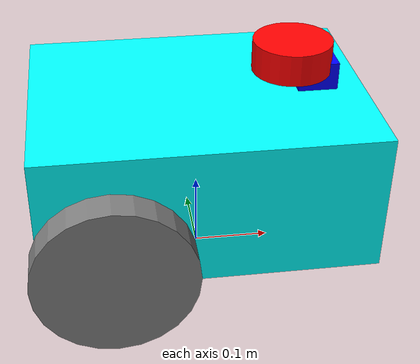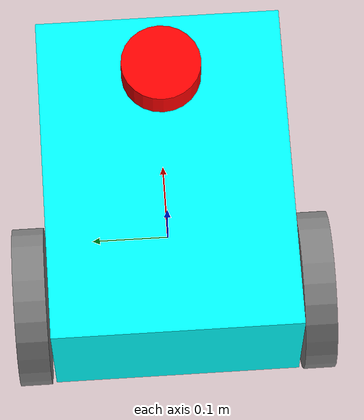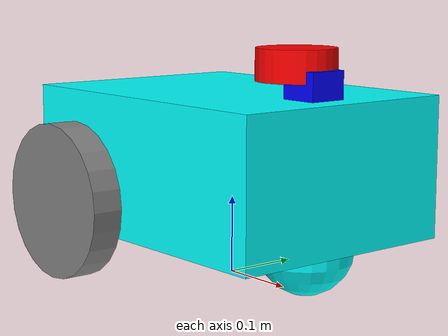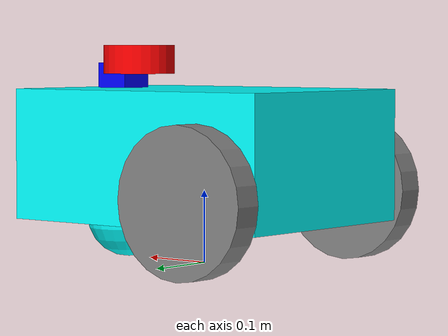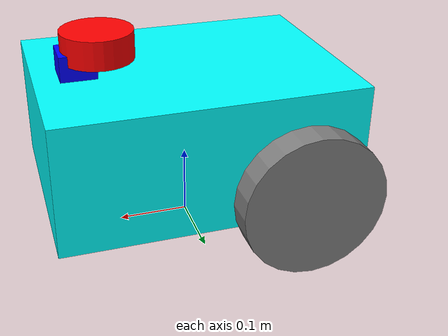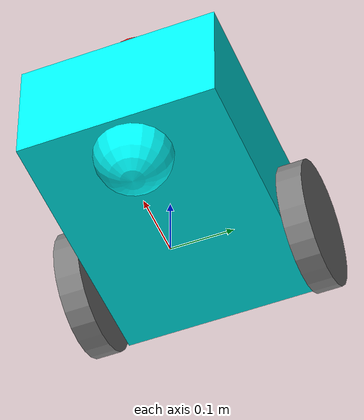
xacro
<?xml version="1.0"?>
<robot name="sam_bot" xmlns:xacro="http://ros.org/wiki/xacro">

  <!-- Define robot constants -->
  <xacro:property name="base_width" value="0.31"/>
  <xacro:property name="base_length" value="0.42"/>
  <xacro:property name="base_height" value="0.18"/>

  <xacro:property name="wheel_radius" value="0.10"/>
  <xacro:property name="wheel_width" value="0.04"/>
  <xacro:property name="wheel_ygap" value="0.025"/>
  <xacro:property name="wheel_zoff" value="0.05"/>
  <xacro:property name="wheel_xoff" value="0.12"/>

  <xacro:property name="caster_xoff" value="0.14"/>

  <!-- Define intertial property macros  -->
  <xacro:macro name="box_inertia" params="m w h d">
    <inertial>
      <origin xyz="0 0 0" rpy="${pi/2} 0 ${pi/2}"/>
      <mass value="${m}"/>
      <inertia ixx="${(m/12) * (h*h + d*d)}" ixy="0.0" ixz="0.0"
               iyy="${(m/12) * (w*w + d*d)}" iyz="0.0"
               izz="${(m/12) * (w*w + h*h)}"/>
    </inertial>
  </xacro:macro>

  <xacro:macro name="cylinder_inertia" params="m r h">
    <inertial>
      <origin xyz="0 0 0" rpy="${pi/2} 0 0" />
      <mass value="${m}"/>
      <inertia ixx="${(m/12) * (3*r*r + h*h)}" ixy = "0" ixz = "0"
               iyy="${(m/12) * (3*r*r + h*h)}" iyz = "0"
               izz="${(m/2) * (r*r)}"/>
    </inertial>
  </xacro:macro>

  <xacro:macro name="sphere_inertia" params="m r">
    <inertial>
      <mass value="${m}"/>
      <inertia ixx="${(2/5) * m * (r*r)}" ixy="0.0" ixz="0.0"
               iyy="${(2/5) * m * (r*r)}" iyz="0.0"
               izz="${(2/5) * m * (r*r)}"/>
    </inertial>
  </xacro:macro>

  <!-- Robot Base -->
  <link name="base_link">
    <visual>
      <geometry>
        <box size="${base_length} ${base_width} ${base_height}"/>
      </geometry>
      <material name="Cyan">
        <color rgba="0 1.0 1.0 1.0"/>
      </material>
    </visual>

    <collision>
      <geometry>
        <box size="${base_length} ${base_width} ${base_height}"/>
      </geometry>
    </collision>

    <xacro:box_inertia m="15" w="${base_width}" d="${base_length}" h="${base_height}"/>
  </link>

  <!-- Robot Footprint -->
  <link name="base_footprint"/>

  <joint name="base_joint" type="fixed">
    <parent link="base_footprint"/>
    <child link="base_link"/>
    <origin xyz="0.0 0.0 ${(wheel_radius+wheel_zoff)}" rpy="0 0 0"/>
  </joint>

  <!-- Wheels -->
  <xacro:macro name="wheel" params="prefix x_reflect y_reflect">
    <link name="${prefix}_link">
      <visual>
        <origin xyz="0 0 0" rpy="${pi/2} 0 0"/>
        <geometry>
            <cylinder radius="${wheel_radius}" length="${wheel_width}"/>
        </geometry>
        <material name="Gray">
          <color rgba="0.5 0.5 0.5 1.0"/>
        </material>
      </visual>

      <collision>
        <origin xyz="0 0 0" rpy="${pi/2} 0 0"/>
        <geometry>
          <cylinder radius="${wheel_radius}" length="${wheel_width}"/>
        </geometry>
      </collision>

      <xacro:cylinder_inertia m="0.5" r="${wheel_radius}" h="${wheel_width}"/>
    </link>

    <joint name="${prefix}_joint" type="continuous">
      <parent link="base_link"/>
      <child link="${prefix}_link"/>
      <origin xyz="${x_reflect*wheel_xoff} ${y_reflect*(base_width/2+wheel_ygap)} ${-wheel_zoff}" rpy="0 0 0"/>
      <axis xyz="0 1 0"/>
    </joint>
  </xacro:macro>

  <xacro:wheel prefix="drivewhl_l" x_reflect="-1" y_reflect="1" />
  <xacro:wheel prefix="drivewhl_r" x_reflect="-1" y_reflect="-1" />

  <!-- Caster Wheel -->
  <link name="front_caster">
    <visual>
      <geometry>
        <sphere radius="${(wheel_radius+wheel_zoff-(base_height/2))}"/>
      </geometry>
      <material name="Cyan">
        <color rgba="0 1.0 1.0 1.0"/>
      </material>
    </visual>

    <collision>
      <origin xyz="0 0 0" rpy="0 0 0"/>
      <geometry>
        <sphere radius="${(wheel_radius+wheel_zoff-(base_height/2))}"/>
      </geometry>
    </collision>

    <xacro:sphere_inertia m="0.5" r="${(wheel_radius+wheel_zoff-(base_height/2))}"/>
  </link>

  <joint name="caster_joint" type="fixed">
    <parent link="base_link"/>
    <child link="front_caster"/>
    <origin xyz="${caster_xoff} 0.0 ${-(base_height/2)}" rpy="0 0 0"/>
  </joint>

  <!-- LiDAR Sensor -->
  <link name="laser">
    <visual>
      <origin xyz="0 0 0" rpy="0 0 0"/>
      <geometry>
        <cylinder radius="0.05" length="0.04"/>
      </geometry>
      <material name="Red">
        <color rgba="1.0 0.0 0.0 1.0"/>
      </material>
    </visual>

    <collision>
      <origin xyz="0 0 0" rpy="0 0 0"/>
      <geometry>
        <cylinder radius="0.05" length="0.04"/>
      </geometry>
    </collision>

    <xacro:cylinder_inertia m="0.1" r="0.05" h="0.04"/>
  </link>

  <joint name="laser_joint" type="fixed">
    <parent link="base_link"/>
    <child link="laser"/>
    <origin xyz="0.12 0 0.13" rpy="0 0 0"/>
  </joint>

  <!-- RGB-D Camera (for RTABMap) -->
  <link name="camera_link">
    <visual>
      <origin xyz="0 0 0" rpy="0 0 0"/>
      <geometry>
        <box size="0.05 0.05 0.05"/>
      </geometry>
      <material name="Blue">
        <color rgba="0.0 0.0 1.0 1.0"/>
      </material>
    </visual>

    <collision>
      <origin xyz="0 0 0" rpy="0 0 0"/>
      <geometry>
        <box size="0.05 0.05 0.05"/>
      </geometry>
    </collision>

    <xacro:box_inertia m="0.1" w="0.05" d="0.05" h="0.05"/>
  </link>

  <joint name="camera_joint" type="fixed">
    <parent link="base_link"/>
    <child link="camera_link"/>
    <origin xyz="0.15 0 0.10" rpy="0 0 0"/>

    <!-- 카메라가 달린 위치 설정으로 바꿔 -->>

  </joint>

  <!-- Camera optical frame -->
  <link name="camera_depth_frame"/>

  <joint name="camera_depth_joint" type="fixed">
    <origin xyz="0.0 0.0 0.0" rpy="-1.5707 0.0 -1.5707"/>
    <parent link="camera_link"/>
    <child link="camera_depth_frame"/>
  </joint>

  <!-- IMU Sensor -->
  <link name="imu_link">
    <visual>
      <origin xyz="0 0 0" rpy="0 0 0"/>
      <geometry>
        <box size="0.02 0.02 0.02"/>
      </geometry>
      <material name="Green">
        <color rgba="0.0 1.0 0.0 1.0"/>
      </material>
    </visual>

    <collision>
      <origin xyz="0 0 0" rpy="0 0 0"/>
      <geometry>
        <box size="0.02 0.02 0.02"/>
      </geometry>
    </collision>

    <xacro:box_inertia m="0.01" w="0.02" d="0.02" h="0.02"/>
  </link>

  <joint name="imu_joint" type="fixed">
    <parent link="base_link"/>
    <child link="imu_link"/>
    <origin xyz="0.0 0.0 0.05" rpy="0 0 0"/>
  </joint>

  <!-- Gazebo Plugins -->
  <gazebo>
    <plugin name="differential_drive_controller" filename="libgazebo_ros_diff_drive.so">
      <ros>
        <namespace>/</namespace>
        <remapping>cmd_vel:=cmd_vel</remapping>
        <remapping>odom:=odom</remapping>
      </ros>

      <!-- wheels -->
      <left_joint>drivewhl_l_joint</left_joint>
      <right_joint>drivewhl_r_joint</right_joint>

      <!-- kinematics -->
      <wheel_separation>0.4</wheel_separation>
      <wheel_diameter>0.2</wheel_diameter>

      <!-- limits -->
      <max_wheel_torque>200</max_wheel_torque>
      <max_wheel_acceleration>10.0</max_wheel_acceleration>

      <!-- Odometry -->
      <odometry_frame>odom</odometry_frame>
      <robot_base_frame>base_footprint</robot_base_frame>

      <publish_odom>true</publish_odom>
      <publish_odom_tf>true</publish_odom_tf>
      <publish_wheel_tf>false</publish_wheel_tf>

      <odometry_topic>odom</odometry_topic>
      <odometry_source>world</odometry_source>

      <update_rate>30</update_rate>
    </plugin>
  </gazebo>

  <!-- LiDAR Gazebo Plugin -->
  <gazebo reference="laser">
    <material>Gazebo/FlatBlack</material>
    <sensor name="lds_lfcd_sensor" type="ray">
      <pose>0 0 0 0 0 0</pose>
      <visualize>true</visualize>
      <update_rate>5</update_rate>
      <ray>
        <scan>
          <horizontal>
            <samples>360</samples>
            <resolution>1</resolution>
            <min_angle>-3.141592654</min_angle>
            <max_angle>3.141592654</max_angle>
          </horizontal>
        </scan>
        <range>
          <min>0.10</min>
          <max>30.0</max>
          <resolution>0.01</resolution>
        </range>
        <noise>
          <type>gaussian</type>
          <mean>0.0</mean>
          <stddev>0.01</stddev>
        </noise>
      </ray>
      <plugin name="gazebo_ros_lds_lfcd_controller" filename="libgazebo_ros_ray_sensor.so">
        <ros>
          <remapping>~/out:=scan</remapping>
        </ros>
        <output_type>sensor_msgs/LaserScan</output_type>
      </plugin>
    </sensor>
  </gazebo>

  <!-- RGB-D Camera Gazebo Plugin -->
  <gazebo reference="camera_link">
    <material>Gazebo/Blue</material>
    <sensor name="camera" type="depth">
      <update_rate>20</update_rate>
      <camera>
        <horizontal_fov>1.047198</horizontal_fov>
        <image>
          <width>640</width>
          <height>480</height>
          <format>R8G8B8</format>
        </image>
        <clip>
          <near>0.05</near>
          <far>3.0</far>
        </clip>
      </camera>
      <plugin name="camera_driver" filename="libgazebo_ros_camera.so">
        <ros>
          <remapping>~/image_raw:=camera/image_raw</remapping>
          <remapping>~/image_depth:=camera/depth/image_raw</remapping>
          <remapping>~/camera_info:=camera/camera_info</remapping>
          <remapping>~/camera_info_depth:=camera/depth/camera_info</remapping>
          <remapping>~/points:=camera/depth/points</remapping>
        </ros>
        <camera_name>camera</camera_name>
        <frame_name>camera_depth_frame</frame_name>
        <hack_baseline>0.07</hack_baseline>
      </plugin>
    </sensor>
  </gazebo>

  <!-- IMU Gazebo Plugin -->
  <gazebo reference="imu_link">
    <sensor name="imu_sensor" type="imu">
      <plugin filename="libgazebo_ros_imu_sensor.so" name="imu_plugin">
        <ros>
          <remapping>~/out:=imu</remapping>
        </ros>
        <initial_orientation_as_reference>false</initial_orientation_as_reference>
      </plugin>
      <always_on>true</always_on>
      <update_rate>100</update_rate>
      <visualize>true</visualize>
      <imu>
        <angular_velocity>
          <x>
            <noise type="gaussian">
              <mean>0.0</mean>
              <stddev>2e-4</stddev>
              <bias_mean>0.0000075</bias_mean>
              <bias_stddev>0.0000008</bias_stddev>
            </noise>
          </x>
          <y>
            <noise type="gaussian">
              <mean>0.0</mean>
              <stddev>2e-4</stddev>
              <bias_mean>0.0000075</bias_mean>
              <bias_stddev>0.0000008</bias_stddev>
            </noise>
          </y>
          <z>
            <noise type="gaussian">
              <mean>0.0</mean>
              <stddev>2e-4</stddev>
              <bias_mean>0.0000075</bias_mean>
              <bias_stddev>0.0000008</bias_stddev>
            </noise>
          </z>
        </angular_velocity>
        <linear_acceleration>
          <x>
            <noise type="gaussian">
              <mean>0.0</mean>
              <stddev>1.7e-2</stddev>
              <bias_mean>0.1</bias_mean>
              <bias_stddev>0.001</bias_stddev>
            </noise>
          </x>
          <y>
            <noise type="gaussian">
              <mean>0.0</mean>
              <stddev>1.7e-2</stddev>
              <bias_mean>0.1</bias_mean>
              <bias_stddev>0.001</bias_stddev>
            </noise>
          </y>
          <z>
            <noise type="gaussian">
              <mean>0.0</mean>
              <stddev>1.7e-2</stddev>
              <bias_mean>0.1</bias_mean>
              <bias_stddev>0.001</bias_stddev>
            </noise>
          </z>
        </linear_acceleration>
      </imu>
    </sensor>
  </gazebo>

</robot>
